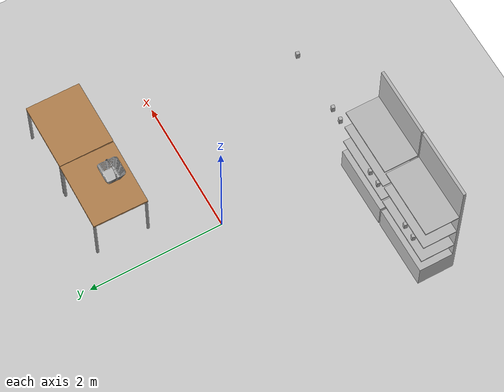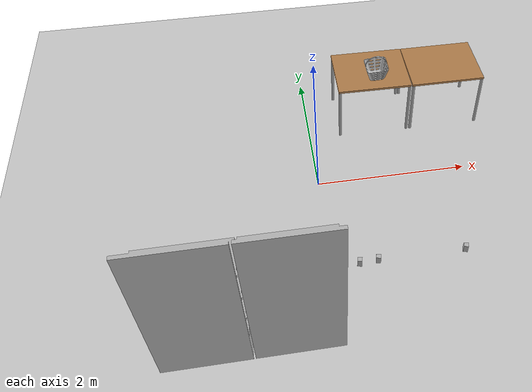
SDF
<sdf version="1.6">
 <world name="default">
  <plugin name="ros_link_attacher_plugin" filename="libgazebo_ros_link_attacher.so"/>
  <light name="sun" type="directional">
   <pose>0 0 10 0 -0 0</pose>
   <diffuse>0.8 0.8 0.8 1</diffuse>
   <specular>0.2 0.2 0.2 1</specular>
   <attenuation>
    <range>1000</range>
    <constant>0.9</constant>
    <linear>0.01</linear>
    <quadratic>0.001</quadratic>
   </attenuation>
   <direction>-0.5 0.1 -0.9</direction>
  </light>
  <model name="ground_plane">
   <static>1</static>
   <link name="link">
    <collision name="collision">
     <geometry><plane><normal>0 0 1</normal><size>100 100</size></plane></geometry>
     <surface>
      <contact><collide_bitmask>65535</collide_bitmask></contact>
      <friction><ode><mu>100</mu><mu2>50</mu2></ode></friction>
     </surface>
    </collision>
    <visual name="visual">
     <cast_shadows>0</cast_shadows>
     <geometry><plane><normal>0 0 1</normal><size>100 100</size></plane></geometry>
     <material>
      <script><uri>file://media/materials/scripts/gazebo.material</uri><name>Gazebo/Grey</name></script>
     </material>
    </visual>
   </link>
  </model>
  <gravity>0 0 -9.8</gravity>
  <magnetic_field>6e-06 2.3e-05 -4.2e-05</magnetic_field>
  <atmosphere type="adiabatic"/>
  <physics name="default_physics" default="0" type="ode">
   <max_step_size>0.001</max_step_size>
   <real_time_factor>1</real_time_factor>
   <real_time_update_rate>1000</real_time_update_rate>
  </physics>
  <scene><ambient>0.4 0.4 0.4 1</ambient><background>0.7 0.7 0.7 1</background><shadows>1</shadows></scene>
  <audio><device>default</device></audio>
  <spherical_coordinates>
   <surface_model>EARTH_WGS84</surface_model>
   <latitude_deg>0</latitude_deg>
   <longitude_deg>0</longitude_deg>
   <elevation>0</elevation>
   <heading_deg>0</heading_deg>
  </spherical_coordinates>
  <model name="table">
   <static>1</static>
   <link name="link">
    <collision name="surface">
     <pose>0 0 0.8 0 -0 0</pose>
     <geometry><box><size>1 0.8 0.03</size></box></geometry>
    </collision>
    <visual name="visual1">
     <pose>0 0 0.8 0 -0 0</pose>
     <geometry><box><size>1 0.8 0.03</size></box></geometry>
     <material>
      <script><uri>file://media/materials/scripts/gazebo.material</uri><name>Gazebo/Wood</name></script>
     </material>
    </visual>
    <collision name="front_left_leg">
     <pose>0.48 0.38 0.4 0 -0 0</pose>
     <geometry><cylinder><radius>0.02</radius><length>0.8</length></cylinder></geometry>
    </collision>
    <visual name="front_left_leg">
     <pose>0.48 0.38 0.4 0 -0 0</pose>
     <geometry><cylinder><radius>0.02</radius><length>0.8</length></cylinder></geometry>
     <material>
      <script><uri>file://media/materials/scripts/gazebo.material</uri><name>Gazebo/Grey</name></script>
     </material>
    </visual>
    <collision name="front_right_leg">
     <pose>0.48 -0.38 0.4 0 -0 0</pose>
     <geometry><cylinder><radius>0.02</radius><length>0.8</length></cylinder></geometry>
    </collision>
    <visual name="front_right_leg">
     <pose>0.48 -0.38 0.4 0 -0 0</pose>
     <geometry><cylinder><radius>0.02</radius><length>0.8</length></cylinder></geometry>
     <material>
      <script><uri>file://media/materials/scripts/gazebo.material</uri><name>Gazebo/Grey</name></script>
     </material>
    </visual>
    <collision name="back_right_leg">
     <pose>-0.48 -0.38 0.4 0 -0 0</pose>
     <geometry><cylinder><radius>0.02</radius><length>0.8</length></cylinder></geometry>
    </collision>
    <visual name="back_right_leg">
     <pose>-0.48 -0.38 0.4 0 -0 0</pose>
     <geometry><cylinder><radius>0.02</radius><length>0.8</length></cylinder></geometry>
     <material>
      <script><uri>file://media/materials/scripts/gazebo.material</uri><name>Gazebo/Grey</name></script>
     </material>
    </visual>
    <collision name="back_left_leg">
     <pose>-0.48 0.38 0.4 0 -0 0</pose>
     <geometry><cylinder><radius>0.02</radius><length>0.8</length></cylinder></geometry>
    </collision>
    <visual name="back_left_leg">
     <pose>-0.48 0.38 0.4 0 -0 0</pose>
     <geometry><cylinder><radius>0.02</radius><length>0.8</length></cylinder></geometry>
     <material>
      <script><uri>file://media/materials/scripts/gazebo.material</uri><name>Gazebo/Grey</name></script>
     </material>
    </visual>
    <velocity_decay><linear>0</linear><angular>0</angular></velocity_decay>
   </link>
   <pose>1.93703 1.25102 0 0 -0 3.14</pose>
  </model>
  <model name="table_1">
   <static>1</static>
   <link name="link">
    <collision name="surface">
     <pose>0 0 0.8 0 -0 0</pose>
     <geometry><box><size>1 0.8 0.03</size></box></geometry>
    </collision>
    <visual name="visual1">
     <pose>0 0 0.8 0 -0 0</pose>
     <geometry><box><size>1 0.8 0.03</size></box></geometry>
     <material>
      <script><uri>file://media/materials/scripts/gazebo.material</uri><name>Gazebo/Wood</name></script>
     </material>
    </visual>
    <collision name="front_left_leg">
     <pose>0.48 0.38 0.4 0 -0 0</pose>
     <geometry><cylinder><radius>0.02</radius><length>0.8</length></cylinder></geometry>
    </collision>
    <visual name="front_left_leg">
     <pose>0.48 0.38 0.4 0 -0 0</pose>
     <geometry><cylinder><radius>0.02</radius><length>0.8</length></cylinder></geometry>
     <material>
      <script><uri>file://media/materials/scripts/gazebo.material</uri><name>Gazebo/Grey</name></script>
     </material>
    </visual>
    <collision name="front_right_leg">
     <pose>0.48 -0.38 0.4 0 -0 0</pose>
     <geometry><cylinder><radius>0.02</radius><length>0.8</length></cylinder></geometry>
    </collision>
    <visual name="front_right_leg">
     <pose>0.48 -0.38 0.4 0 -0 0</pose>
     <geometry><cylinder><radius>0.02</radius><length>0.8</length></cylinder></geometry>
     <material>
      <script><uri>file://media/materials/scripts/gazebo.material</uri><name>Gazebo/Grey</name></script>
     </material>
    </visual>
    <collision name="back_right_leg">
     <pose>-0.48 -0.38 0.4 0 -0 0</pose>
     <geometry><cylinder><radius>0.02</radius><length>0.8</length></cylinder></geometry>
    </collision>
    <visual name="back_right_leg">
     <pose>-0.48 -0.38 0.4 0 -0 0</pose>
     <geometry><cylinder><radius>0.02</radius><length>0.8</length></cylinder></geometry>
     <material>
      <script><uri>file://media/materials/scripts/gazebo.material</uri><name>Gazebo/Grey</name></script>
     </material>
    </visual>
    <collision name="back_left_leg">
     <pose>-0.48 0.38 0.4 0 -0 0</pose>
     <geometry><cylinder><radius>0.02</radius><length>0.8</length></cylinder></geometry>
    </collision>
    <visual name="back_left_leg">
     <pose>-0.48 0.38 0.4 0 -0 0</pose>
     <geometry><cylinder><radius>0.02</radius><length>0.8</length></cylinder></geometry>
     <material>
      <script><uri>file://media/materials/scripts/gazebo.material</uri><name>Gazebo/Grey</name></script>
     </material>
    </visual>
    <velocity_decay><linear>0</linear><angular>0</angular></velocity_decay>
   </link>
   <pose>0.927037 1.26079 0 0 -0 3.12841</pose>
  </model>
  <model name="aruco_cube_111">
   <static>0</static>
   <link name="link">
    <inertial>
     <mass>0.05</mass>
     <inertia>
      <ixx>5.2083e-05</ixx>
      <ixy>0</ixy>
      <ixz>0</ixz>
      <iyy>5.2083e-05</iyy>
      <iyz>0</iyz>
      <izz>2.0833e-05</izz>
     </inertia>
    </inertial>
    <collision name="colision">
     <geometry><box><size>0.05 0.05 0.1</size></box></geometry>
     <surface>
      <friction><ode><mu>30</mu><mu2>30</mu2><fdir1>0 0 0</fdir1></ode></friction>
      <contact><ode><kp>1e+06</kp><kd>100</kd><min_depth>0.0025</min_depth><max_vel>1</max_vel></ode></contact>
     </surface>
    </collision>
    <visual name="visual1">
     <geometry>
      <mesh><uri>model://aruco_cube_111/meshes/aruco_cube_5cm.dae</uri><scale>1 1 2</scale></mesh>
     </geometry>
    </visual>
    <velocity_decay><linear>0</linear><angular>0</angular></velocity_decay>
   </link>
   <pose>0.4 -1.92 0.91 0 0 -0.2</pose>
  </model>
  <model name="aruco_cube_112">
   <static>0</static>
   <link name="link">
    <inertial>
     <mass>0.05</mass>
     <inertia>
      <ixx>5.2083e-05</ixx>
      <ixy>0</ixy>
      <ixz>0</ixz>
      <iyy>5.2083e-05</iyy>
      <iyz>0</iyz>
      <izz>2.0833e-05</izz>
     </inertia>
    </inertial>
    <collision name="colision">
     <geometry><box><size>0.05 0.05 0.1</size></box></geometry>
     <surface>
      <friction><ode><mu>30</mu><mu2>30</mu2><fdir1>0 0 0</fdir1></ode></friction>
      <contact><ode><kp>1e+06</kp><kd>100</kd><min_depth>0.0025</min_depth><max_vel>1</max_vel></ode></contact>
     </surface>
    </collision>
    <visual name="visual1">
     <geometry>
      <mesh><uri>model://aruco_cube_112/meshes/aruco_cube_5cm.dae</uri><scale>1 1 2</scale></mesh>
     </geometry>
    </visual>
    <velocity_decay><linear>0</linear><angular>0</angular></velocity_decay>
   </link>
   <pose>0.2 -1.92 0.900763 -0 -0 -0.2</pose>
  </model>
  <model name="aruco_cube_221">
   <static>0</static>
   <link name="link">
    <inertial>
     <mass>0.05</mass>
     <inertia>
      <ixx>5.2083e-05</ixx>
      <ixy>0</ixy>
      <ixz>0</ixz>
      <iyy>5.2083e-05</iyy>
      <iyz>0</iyz>
      <izz>2.0833e-05</izz>
     </inertia>
    </inertial>
    <collision name="colision">
     <geometry><box><size>0.05 0.05 0.1</size></box></geometry>
     <surface>
      <friction><ode><mu>30</mu><mu2>30</mu2><fdir1>0 0 0</fdir1></ode></friction>
      <contact><ode><kp>1e+06</kp><kd>100</kd><min_depth>0.0025</min_depth><max_vel>1</max_vel></ode></contact>
     </surface>
    </collision>
    <visual name="visual1">
     <geometry>
      <mesh><uri>model://aruco_cube_221/meshes/aruco_cube_5cm.dae</uri><scale>1 1 2</scale></mesh>
     </geometry>
    </visual>
    <velocity_decay><linear>0</linear><angular>0</angular></velocity_decay>
   </link>
   <pose>1.35 -1.92 0.900763 0 -0 -0.2</pose>
  </model>
  <model name="aruco_cube_331">
   <static>0</static>
   <link name="link">
    <inertial>
     <mass>0.05</mass>
     <inertia>
      <ixx>5.2083e-05</ixx>
      <ixy>0</ixy>
      <ixz>0</ixz>
      <iyy>5.2083e-05</iyy>
      <iyz>0</iyz>
      <izz>2.0833e-05</izz>
     </inertia>
    </inertial>
    <collision name="colision">
     <geometry><box><size>0.05 0.05 0.1</size></box></geometry>
     <surface>
      <friction><ode><mu>30</mu><mu2>30</mu2><fdir1>0 0 0</fdir1></ode></friction>
      <contact><ode><kp>1e+06</kp><kd>100</kd><min_depth>0.0025</min_depth><max_vel>1</max_vel></ode></contact>
     </surface>
    </collision>
    <visual name="visual1">
     <geometry>
      <mesh><uri>model://aruco_cube_331/meshes/aruco_cube_5cm.dae</uri><scale>1 1 2</scale></mesh>
     </geometry>
    </visual>
    <velocity_decay><linear>0</linear><angular>0</angular></velocity_decay>
   </link>
   <pose>-0.6 -1.92 0.7575 -0 -0 -0.2</pose>
  </model>
  <model name="aruco_cube_332">
   <static>0</static>
   <link name="link">
    <inertial>
     <mass>0.05</mass>
     <inertia>
      <ixx>5.2083e-05</ixx>
      <ixy>0</ixy>
      <ixz>0</ixz>
      <iyy>5.2083e-05</iyy>
      <iyz>0</iyz>
      <izz>2.0833e-05</izz>
     </inertia>
    </inertial>
    <collision name="colision">
     <geometry><box><size>0.05 0.05 0.1</size></box></geometry>
     <surface>
      <friction><ode><mu>30</mu><mu2>30</mu2><fdir1>0 0 0</fdir1></ode></friction>
      <contact><ode><kp>1e+06</kp><kd>100</kd><min_depth>0.0025</min_depth><max_vel>1</max_vel></ode></contact>
     </surface>
    </collision>
    <visual name="visual1">
     <geometry>
      <mesh><uri>model://aruco_cube_332/meshes/aruco_cube_5cm.dae</uri><scale>1 1 2</scale></mesh>
     </geometry>
    </visual>
    <velocity_decay><linear>0</linear><angular>0</angular></velocity_decay>
   </link>
   <pose>-0.8 -1.92 0.7575 -0 -0 -0.2</pose>
  </model>
  <model name="aruco_cube_441">
   <static>0</static>
   <link name="link">
    <inertial>
     <mass>0.05</mass>
     <inertia>
      <ixx>5.2083e-05</ixx>
      <ixy>0</ixy>
      <ixz>0</ixz>
      <iyy>5.2083e-05</iyy>
      <iyz>0</iyz>
      <izz>2.0833e-05</izz>
     </inertia>
    </inertial>
    <collision name="colision">
     <geometry><box><size>0.05 0.05 0.1</size></box></geometry>
     <surface>
      <friction><ode><mu>30</mu><mu2>30</mu2><fdir1>0 0 0</fdir1></ode></friction>
      <contact><ode><kp>1e+06</kp><kd>100</kd><min_depth>0.0025</min_depth><max_vel>1</max_vel></ode></contact>
     </surface>
    </collision>
    <visual name="visual1">
     <geometry>
      <mesh><uri>model://aruco_cube_441/meshes/aruco_cube_5cm.dae</uri><scale>1 1 2</scale></mesh>
     </geometry>
    </visual>
    <velocity_decay><linear>0</linear><angular>0</angular></velocity_decay>
   </link>
   <pose>-1.5 -1.92 0.7575 0 -0 -0.2</pose>
  </model>
  <model name="aruco_cube_442">
   <static>0</static>
   <link name="link">
    <inertial>
     <mass>0.05</mass>
     <inertia>
      <ixx>5.2083e-05</ixx>
      <ixy>0</ixy>
      <ixz>0</ixz>
      <iyy>5.2083e-05</iyy>
      <iyz>0</iyz>
      <izz>2.0833e-05</izz>
     </inertia>
    </inertial>
    <collision name="colision">
     <geometry><box><size>0.05 0.05 0.1</size></box></geometry>
     <surface>
      <friction><ode><mu>30</mu><mu2>30</mu2><fdir1>0 0 0</fdir1></ode></friction>
      <contact><ode><kp>1e+06</kp><kd>100</kd><min_depth>0.0025</min_depth><max_vel>1</max_vel></ode></contact>
     </surface>
    </collision>
    <visual name="visual1">
     <geometry>
      <mesh><uri>model://aruco_cube_442/meshes/aruco_cube_5cm.dae</uri><scale>1 1 2</scale></mesh>
     </geometry>
    </visual>
    <velocity_decay><linear>0</linear><angular>0</angular></velocity_decay>
   </link>
   <pose>-1.7 -1.92 0.7575 0 -0 -0.2</pose>
  </model>
  <model name="aruco_cube_555">
   <static>0</static>
   <link name="link">
    <inertial>
     <mass>0.05</mass>
     <inertia>
      <ixx>5.2083e-05</ixx>
      <ixy>0</ixy>
      <ixz>0</ixz>
      <iyy>5.2083e-05</iyy>
      <iyz>0</iyz>
      <izz>2.0833e-05</izz>
     </inertia>
    </inertial>
    <collision name="colision">
     <geometry><box><size>0.05 0.05 0.1</size></box></geometry>
     <surface>
      <friction><ode><mu>30</mu><mu2>30</mu2><fdir1>0 0 0</fdir1></ode></friction>
      <contact><ode><kp>1e+06</kp><kd>100</kd><min_depth>0.0025</min_depth><max_vel>1</max_vel></ode></contact>
     </surface>
    </collision>
    <visual name="visual1">
     <geometry>
      <mesh><uri>model://aruco_cube_555/meshes/aruco_cube_5cm.dae</uri><scale>1 1 2</scale></mesh>
     </geometry>
    </visual>
    <velocity_decay><linear>0</linear><angular>0</angular></velocity_decay>
   </link>
   <pose>-0.216667 -2.00365 1.15798 0.00036 -0.001566 1.27357</pose>
  </model>
  <model name="cab_3_shelves">
   <link name="link_0">
    <inertial>
     <mass>1</mass>
     <inertia>
      <ixx>0.166667</ixx>
      <ixy>0</ixy>
      <ixz>0</ixz>
      <iyy>0.166667</iyy>
      <iyz>0</iyz>
      <izz>0.166667</izz>
     </inertia>
    </inertial>
    <visual name="visual">
     <geometry><mesh><uri>model://0-blender/cab_3_shelves.dae</uri><scale>1 1 1</scale></mesh></geometry>
    </visual>
    <collision name="collision">
     <geometry><mesh><uri>model://0-blender/cab_3_shelves.dae</uri><scale>1 1 1</scale></mesh></geometry>
     <surface>
      <friction>
       <ode><mu>1</mu><mu2>1</mu2><fdir1>0 0 0</fdir1><slip1>0</slip1><slip2>0</slip2></ode>
       <torsional>
        <coefficient>1</coefficient>
        <patch_radius>0</patch_radius>
        <surface_radius>0</surface_radius>
        <use_patch_radius>1</use_patch_radius>
        <ode><slip>0</slip></ode>
       </torsional>
      </friction>
      <bounce><restitution_coefficient>0</restitution_coefficient><threshold>1e+06</threshold></bounce>
      <contact>
       <collide_without_contact>0</collide_without_contact>
       <collide_without_contact_bitmask>1</collide_without_contact_bitmask>
       <collide_bitmask>1</collide_bitmask>
       <ode>
        <soft_cfm>0</soft_cfm>
        <soft_erp>0.2</soft_erp>
        <kp>1e+13</kp>
        <kd>1</kd>
        <max_vel>0.01</max_vel>
        <min_depth>0</min_depth>
       </ode>
       <bullet>
        <split_impulse>1</split_impulse>
        <split_impulse_penetration_threshold>-0.01</split_impulse_penetration_threshold>
        <soft_cfm>0</soft_cfm>
        <soft_erp>0.2</soft_erp>
        <kp>1e+13</kp>
        <kd>1</kd>
       </bullet>
      </contact>
     </surface>
    </collision>
   </link>
   <static>1</static>
   <pose>-0.511044 -2.1004 0 0 -0 3.14</pose>
  </model>
  <model name="cab_3_shelves_clone">
   <link name="link_0">
    <inertial>
     <mass>1</mass>
     <inertia>
      <ixx>0.166667</ixx>
      <ixy>0</ixy>
      <ixz>0</ixz>
      <iyy>0.166667</iyy>
      <iyz>0</iyz>
      <izz>0.166667</izz>
     </inertia>
    </inertial>
    <visual name="visual">
     <geometry><mesh><uri>model://0-blender/cab_3_shelves.dae</uri><scale>1 1 1</scale></mesh></geometry>
    </visual>
    <collision name="collision">
     <geometry><mesh><uri>model://0-blender/cab_3_shelves.dae</uri><scale>1 1 1</scale></mesh></geometry>
     <surface>
      <friction>
       <ode><mu>1</mu><mu2>1</mu2><fdir1>0 0 0</fdir1><slip1>0</slip1><slip2>0</slip2></ode>
       <torsional>
        <coefficient>1</coefficient>
        <patch_radius>0</patch_radius>
        <surface_radius>0</surface_radius>
        <use_patch_radius>1</use_patch_radius>
        <ode><slip>0</slip></ode>
       </torsional>
      </friction>
      <bounce><restitution_coefficient>0</restitution_coefficient><threshold>1e+06</threshold></bounce>
      <contact>
       <collide_without_contact>0</collide_without_contact>
       <collide_without_contact_bitmask>1</collide_without_contact_bitmask>
       <collide_bitmask>1</collide_bitmask>
       <ode>
        <soft_cfm>0</soft_cfm>
        <soft_erp>0.2</soft_erp>
        <kp>1e+13</kp>
        <kd>1</kd>
        <max_vel>0.01</max_vel>
        <min_depth>0</min_depth>
       </ode>
       <bullet>
        <split_impulse>1</split_impulse>
        <split_impulse_penetration_threshold>-0.01</split_impulse_penetration_threshold>
        <soft_cfm>0</soft_cfm>
        <soft_erp>0.2</soft_erp>
        <kp>1e+13</kp>
        <kd>1</kd>
       </bullet>
      </contact>
     </surface>
    </collision>
   </link>
   <static>1</static>
   <pose>-1.53515 -2.09982 0 0 -0 3.14</pose>
  </model>
  <model name="basket">
   <pose>0.981136 1.11425 0.81471 0.016058 -0.040714 0.001995</pose>
   <static>0</static>
   <link name="link">
    <inertial>
     <mass>0.25</mass>
     <inertia>
      <ixx>0.003735</ixx>
      <ixy>0</ixy>
      <ixz>0</ixz>
      <iyy>0.003735</iyy>
      <iyz>0</iyz>
      <izz>0.003735</izz>
     </inertia>
    </inertial>
    <collision name="colision">
     <geometry><mesh><uri>model://basket/meshes/basket.dae</uri><scale>0.001 0.001 0.001</scale></mesh></geometry>
     <surface>
      <friction><ode><mu>30</mu><mu2>30</mu2><fdir1>0 0 0</fdir1></ode></friction>
      <contact><ode><kp>1e+06</kp><kd>100</kd><min_depth>0.0025</min_depth><max_vel>1</max_vel></ode></contact>
     </surface>
    </collision>
    <visual name="visual1">
     <geometry><mesh><uri>model://basket/meshes/basket.dae</uri><scale>0.001 0.001 0.001</scale></mesh></geometry>
    </visual>
    <velocity_decay><linear>0</linear><angular>0</angular></velocity_decay>
   </link>
  </model>
 </world>
</sdf>
